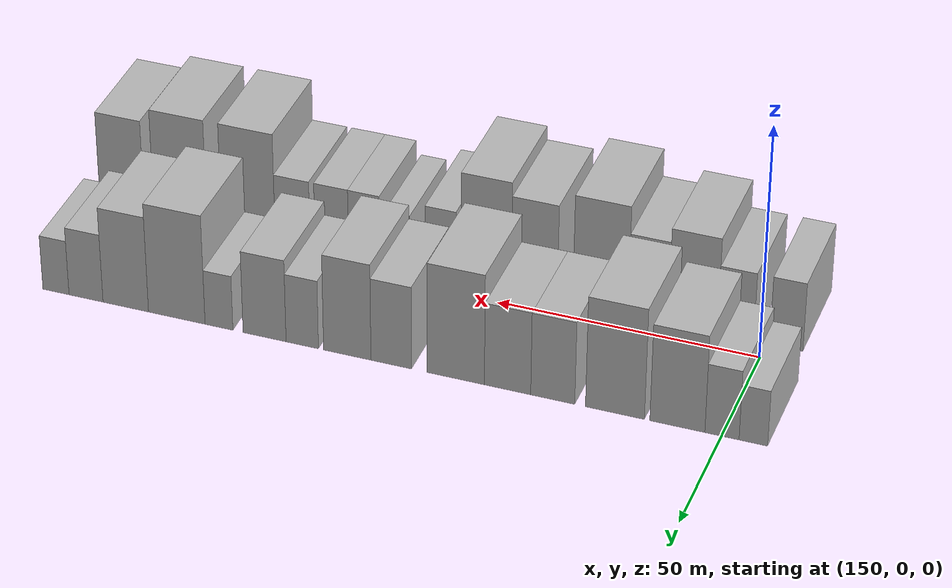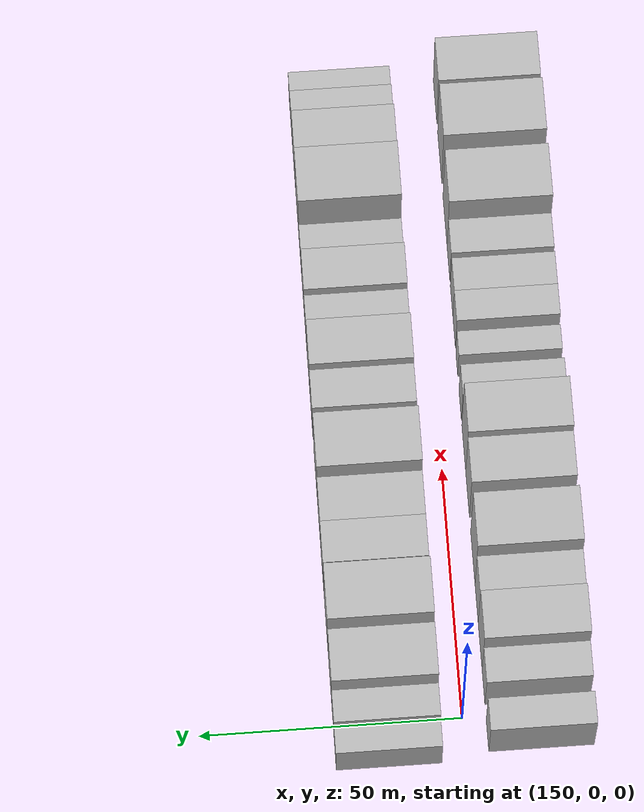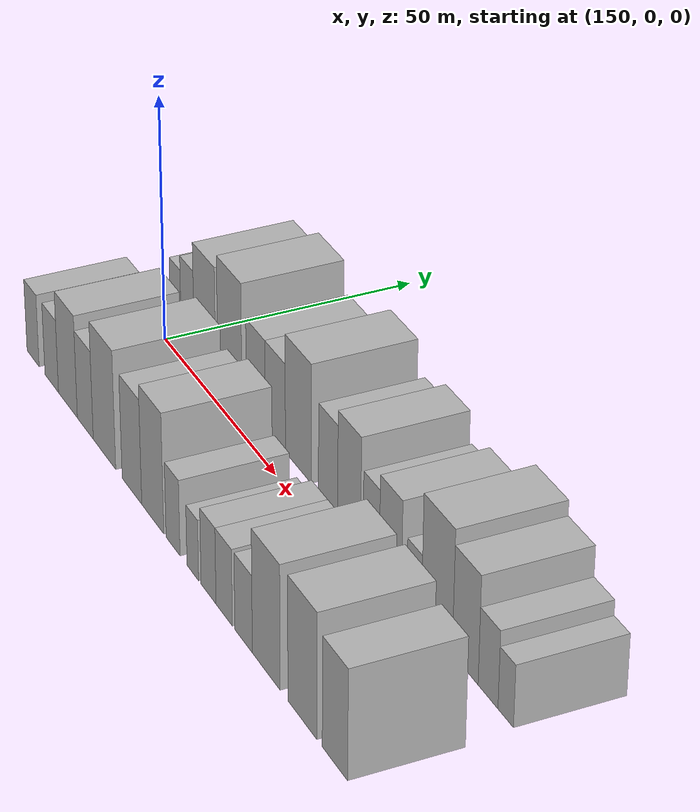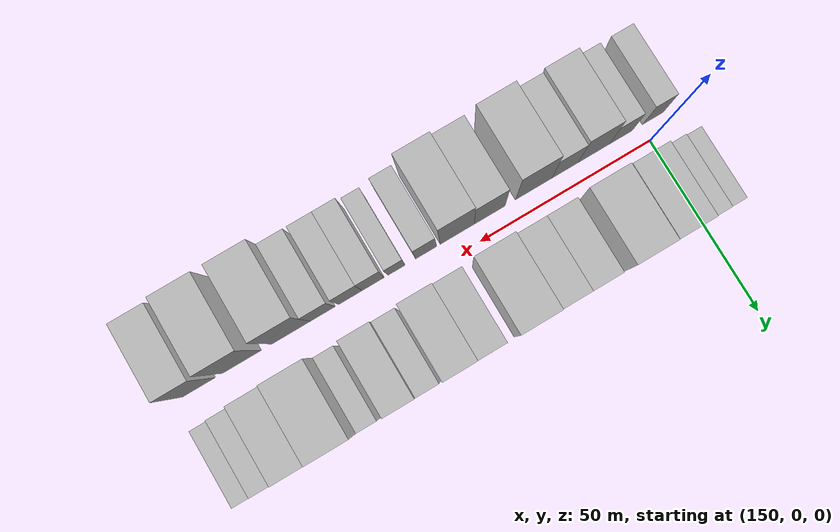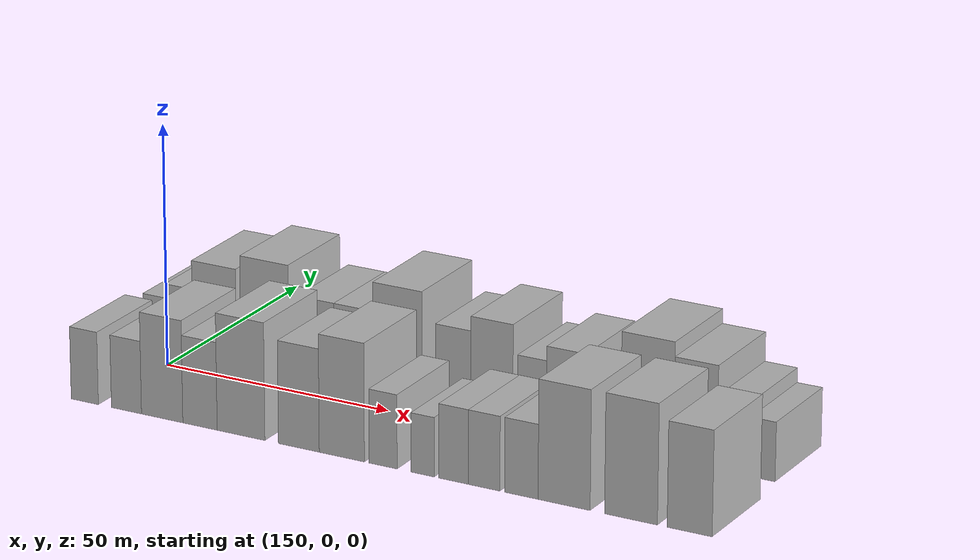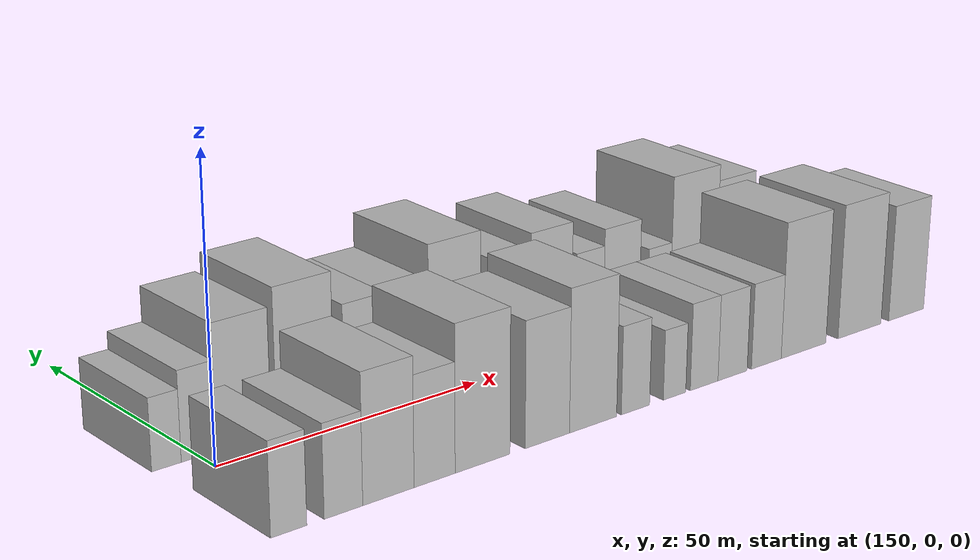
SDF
<sdf version="1.6">
 <world name="default">
  <model name="building_14">
   <static>1</static>
   <pose>144.2247 14.5000 0 0.000000 0.000000 1.570796</pose>
   <link name="link">
    <pose>0 0 6.00 0 0 0</pose>
    <collision name="collision"><geometry><box><size>20.0000 5.1963 12.0000</size></box></geometry></collision>
    <visual name="visual">
     <cast_shadows>0</cast_shadows>
     <geometry><box><size>20.0000 5.1963 12.0000</size></box></geometry>
     <material>
      <script>
       <uri>model://HANNAS_wall/materials/scripts</uri>
       <uri>model://HANNAS_wall/materials/textures</uri>
       <name>vrc/HANNAS_wall</name>
      </script>
     </material>
    </visual>
   </link>
  </model>
  <model name="building_15">
   <static>1</static>
   <pose>149.9397 14.5000 0 0.000000 0.000000 1.570796</pose>
   <link name="link">
    <pose>0 0 7.50 0 0 0</pose>
    <collision name="collision"><geometry><box><size>20.0000 6.2338 15.0000</size></box></geometry></collision>
    <visual name="visual">
     <cast_shadows>0</cast_shadows>
     <geometry><box><size>20.0000 6.2338 15.0000</size></box></geometry>
     <material>
      <script>
       <uri>model://HANNAS_wall/materials/scripts</uri>
       <uri>model://HANNAS_wall/materials/textures</uri>
       <name>vrc/HANNAS_wall</name>
      </script>
     </material>
    </visual>
   </link>
  </model>
  <model name="building_16">
   <static>1</static>
   <pose>158.1114 14.5000 0 0.000000 0.000000 1.570796</pose>
   <link name="link">
    <pose>0 0 10.50 0 0 0</pose>
    <collision name="collision"><geometry><box><size>20.0000 10.1097 21.0000</size></box></geometry></collision>
    <visual name="visual">
     <cast_shadows>0</cast_shadows>
     <geometry><box><size>20.0000 10.1097 21.0000</size></box></geometry>
     <material>
      <script>
       <uri>model://HANNAS_wall/materials/scripts</uri>
       <uri>model://HANNAS_wall/materials/textures</uri>
       <name>vrc/HANNAS_wall</name>
      </script>
     </material>
    </visual>
   </link>
  </model>
  <model name="building_17">
   <static>1</static>
   <pose>169.6307 14.5000 0 0.000000 0.000000 1.570796</pose>
   <link name="link">
    <pose>0 0 12.00 0 0 0</pose>
    <collision name="collision"><geometry><box><size>20.0000 10.9290 24.0000</size></box></geometry></collision>
    <visual name="visual">
     <cast_shadows>0</cast_shadows>
     <geometry><box><size>20.0000 10.9290 24.0000</size></box></geometry>
     <material>
      <script>
       <uri>model://HANNAS_wall/materials/scripts</uri>
       <uri>model://HANNAS_wall/materials/textures</uri>
       <name>vrc/HANNAS_wall</name>
      </script>
     </material>
    </visual>
   </link>
  </model>
  <model name="building_18">
   <static>1</static>
   <pose>181.2219 14.5000 0 0.000000 0.000000 1.570796</pose>
   <link name="link">
    <pose>0 0 9.00 0 0 0</pose>
    <collision name="collision"><geometry><box><size>20.0000 8.2533 18.0000</size></box></geometry></collision>
    <visual name="visual">
     <cast_shadows>0</cast_shadows>
     <geometry><box><size>20.0000 8.2533 18.0000</size></box></geometry>
     <material>
      <script>
       <uri>model://HANNAS_wall/materials/scripts</uri>
       <uri>model://HANNAS_wall/materials/textures</uri>
       <name>vrc/HANNAS_wall</name>
      </script>
     </material>
    </visual>
   </link>
  </model>
  <model name="building_19">
   <static>1</static>
   <pose>189.7160 14.5000 0 0.000000 0.000000 1.570796</pose>
   <link name="link">
    <pose>0 0 9.00 0 0 0</pose>
    <collision name="collision"><geometry><box><size>20.0000 8.7350 18.0000</size></box></geometry></collision>
    <visual name="visual">
     <cast_shadows>0</cast_shadows>
     <geometry><box><size>20.0000 8.7350 18.0000</size></box></geometry>
     <material>
      <script>
       <uri>model://HANNAS_wall/materials/scripts</uri>
       <uri>model://HANNAS_wall/materials/textures</uri>
       <name>vrc/HANNAS_wall</name>
      </script>
     </material>
    </visual>
   </link>
  </model>
  <model name="building_20">
   <static>1</static>
   <pose>199.5120 14.5000 0 0.000000 0.000000 1.570796</pose>
   <link name="link">
    <pose>0 0 12.00 0 0 0</pose>
    <collision name="collision"><geometry><box><size>20.0000 10.8571 24.0000</size></box></geometry></collision>
    <visual name="visual">
     <cast_shadows>0</cast_shadows>
     <geometry><box><size>20.0000 10.8571 24.0000</size></box></geometry>
     <material>
      <script>
       <uri>model://HANNAS_wall/materials/scripts</uri>
       <uri>model://HANNAS_wall/materials/textures</uri>
       <name>vrc/HANNAS_wall</name>
      </script>
     </material>
    </visual>
   </link>
  </model>
  <model name="building_21">
   <static>1</static>
   <pose>211.8389 14.5000 0 0.000000 0.000000 1.570796</pose>
   <link name="link">
    <pose>0 0 9.00 0 0 0</pose>
    <collision name="collision"><geometry><box><size>20.0000 7.7967 18.0000</size></box></geometry></collision>
    <visual name="visual">
     <cast_shadows>0</cast_shadows>
     <geometry><box><size>20.0000 7.7967 18.0000</size></box></geometry>
     <material>
      <script>
       <uri>model://HANNAS_wall/materials/scripts</uri>
       <uri>model://HANNAS_wall/materials/textures</uri>
       <name>vrc/HANNAS_wall</name>
      </script>
     </material>
    </visual>
   </link>
  </model>
  <model name="building_22">
   <static>1</static>
   <pose>220.3157 14.5000 0 0.000000 0.000000 1.570796</pose>
   <link name="link">
    <pose>0 0 10.50 0 0 0</pose>
    <collision name="collision"><geometry><box><size>20.0000 9.1568 21.0000</size></box></geometry></collision>
    <visual name="visual">
     <cast_shadows>0</cast_shadows>
     <geometry><box><size>20.0000 9.1568 21.0000</size></box></geometry>
     <material>
      <script>
       <uri>model://HANNAS_wall/materials/scripts</uri>
       <uri>model://HANNAS_wall/materials/textures</uri>
       <name>vrc/HANNAS_wall</name>
      </script>
     </material>
    </visual>
   </link>
  </model>
  <model name="building_23">
   <static>1</static>
   <pose>229.0466 14.5000 0 0.000000 0.000000 1.570796</pose>
   <link name="link">
    <pose>0 0 7.50 0 0 0</pose>
    <collision name="collision"><geometry><box><size>20.0000 6.3051 15.0000</size></box></geometry></collision>
    <visual name="visual">
     <cast_shadows>0</cast_shadows>
     <geometry><box><size>20.0000 6.3051 15.0000</size></box></geometry>
     <material>
      <script>
       <uri>model://HANNAS_wall/materials/scripts</uri>
       <uri>model://HANNAS_wall/materials/textures</uri>
       <name>vrc/HANNAS_wall</name>
      </script>
     </material>
    </visual>
   </link>
  </model>
  <model name="building_24">
   <static>1</static>
   <pose>236.4093 14.5000 0 0.000000 0.000000 1.570796</pose>
   <link name="link">
    <pose>0 0 9.00 0 0 0</pose>
    <collision name="collision"><geometry><box><size>20.0000 8.4203 18.0000</size></box></geometry></collision>
    <visual name="visual">
     <cast_shadows>0</cast_shadows>
     <geometry><box><size>20.0000 8.4203 18.0000</size></box></geometry>
     <material>
      <script>
       <uri>model://HANNAS_wall/materials/scripts</uri>
       <uri>model://HANNAS_wall/materials/textures</uri>
       <name>vrc/HANNAS_wall</name>
      </script>
     </material>
    </visual>
   </link>
  </model>
  <model name="building_25">
   <static>1</static>
   <pose>245.3656 14.5000 0 0.000000 0.000000 1.570796</pose>
   <link name="link">
    <pose>0 0 6.00 0 0 0</pose>
    <collision name="collision"><geometry><box><size>20.0000 5.4925 12.0000</size></box></geometry></collision>
    <visual name="visual">
     <cast_shadows>0</cast_shadows>
     <geometry><box><size>20.0000 5.4925 12.0000</size></box></geometry>
     <material>
      <script>
       <uri>model://HANNAS_wall/materials/scripts</uri>
       <uri>model://HANNAS_wall/materials/textures</uri>
       <name>vrc/HANNAS_wall</name>
      </script>
     </material>
    </visual>
   </link>
  </model>
  <model name="building_26">
   <static>1</static>
   <pose>253.7305 14.5000 0 0.000000 0.000000 1.570796</pose>
   <link name="link">
    <pose>0 0 12.00 0 0 0</pose>
    <collision name="collision"><geometry><box><size>20.0000 11.2373 24.0000</size></box></geometry></collision>
    <visual name="visual">
     <cast_shadows>0</cast_shadows>
     <geometry><box><size>20.0000 11.2373 24.0000</size></box></geometry>
     <material>
      <script>
       <uri>model://HANNAS_wall/materials/scripts</uri>
       <uri>model://HANNAS_wall/materials/textures</uri>
       <name>vrc/HANNAS_wall</name>
      </script>
     </material>
    </visual>
   </link>
  </model>
  <model name="building_27">
   <static>1</static>
   <pose>263.9047 14.5000 0 0.000000 0.000000 1.570796</pose>
   <link name="link">
    <pose>0 0 10.50 0 0 0</pose>
    <collision name="collision"><geometry><box><size>20.0000 9.1110 21.0000</size></box></geometry></collision>
    <visual name="visual">
     <cast_shadows>0</cast_shadows>
     <geometry><box><size>20.0000 9.1110 21.0000</size></box></geometry>
     <material>
      <script>
       <uri>model://HANNAS_wall/materials/scripts</uri>
       <uri>model://HANNAS_wall/materials/textures</uri>
       <name>vrc/HANNAS_wall</name>
      </script>
     </material>
    </visual>
   </link>
  </model>
  <model name="building_28">
   <static>1</static>
   <pose>271.8856 14.5000 0 0.000000 0.000000 1.570796</pose>
   <link name="link">
    <pose>0 0 7.50 0 0 0</pose>
    <collision name="collision"><geometry><box><size>20.0000 6.8509 15.0000</size></box></geometry></collision>
    <visual name="visual">
     <cast_shadows>0</cast_shadows>
     <geometry><box><size>20.0000 6.8509 15.0000</size></box></geometry>
     <material>
      <script>
       <uri>model://HANNAS_wall/materials/scripts</uri>
       <uri>model://HANNAS_wall/materials/textures</uri>
       <name>vrc/HANNAS_wall</name>
      </script>
     </material>
    </visual>
   </link>
  </model>
  <model name="building_29">
   <static>1</static>
   <pose>277.9489 14.5000 0 0.000000 0.000000 1.570796</pose>
   <link name="link">
    <pose>0 0 6.00 0 0 0</pose>
    <collision name="collision"><geometry><box><size>20.0000 5.2755 12.0000</size></box></geometry></collision>
    <visual name="visual">
     <cast_shadows>0</cast_shadows>
     <geometry><box><size>20.0000 5.2755 12.0000</size></box></geometry>
     <material>
      <script>
       <uri>model://HANNAS_wall/materials/scripts</uri>
       <uri>model://HANNAS_wall/materials/textures</uri>
       <name>vrc/HANNAS_wall</name>
      </script>
     </material>
    </visual>
   </link>
  </model>
  <model name="building_45">
   <static>1</static>
   <pose>146.3223 -14.5000 0 0.000000 0.000000 1.570796</pose>
   <link name="link">
    <pose>0 0 7.50 0 0 0</pose>
    <collision name="collision"><geometry><box><size>20.0000 6.2253 15.0000</size></box></geometry></collision>
    <visual name="visual">
     <cast_shadows>0</cast_shadows>
     <geometry><box><size>20.0000 6.2253 15.0000</size></box></geometry>
     <material>
      <script>
       <uri>model://HANNAS_wall/materials/scripts</uri>
       <uri>model://HANNAS_wall/materials/textures</uri>
       <name>vrc/HANNAS_wall</name>
      </script>
     </material>
    </visual>
   </link>
  </model>
  <model name="building_46">
   <static>1</static>
   <pose>155.8530 -14.5000 0 0.000000 0.000000 1.570796</pose>
   <link name="link">
    <pose>0 0 7.50 0 0 0</pose>
    <collision name="collision"><geometry><box><size>20.0000 6.8361 15.0000</size></box></geometry></collision>
    <visual name="visual">
     <cast_shadows>0</cast_shadows>
     <geometry><box><size>20.0000 6.8361 15.0000</size></box></geometry>
     <material>
      <script>
       <uri>model://HANNAS_wall/materials/scripts</uri>
       <uri>model://HANNAS_wall/materials/textures</uri>
       <name>vrc/HANNAS_wall</name>
      </script>
     </material>
    </visual>
   </link>
  </model>
  <model name="building_47">
   <static>1</static>
   <pose>163.9520 -14.5000 0 0.000000 0.000000 1.570796</pose>
   <link name="link">
    <pose>0 0 10.50 0 0 0</pose>
    <collision name="collision"><geometry><box><size>20.0000 9.3619 21.0000</size></box></geometry></collision>
    <visual name="visual">
     <cast_shadows>0</cast_shadows>
     <geometry><box><size>20.0000 9.3619 21.0000</size></box></geometry>
     <material>
      <script>
       <uri>model://HANNAS_wall/materials/scripts</uri>
       <uri>model://HANNAS_wall/materials/textures</uri>
       <name>vrc/HANNAS_wall</name>
      </script>
     </material>
    </visual>
   </link>
  </model>
  <model name="building_48">
   <static>1</static>
   <pose>172.4879 -14.5000 0 0.000000 0.000000 1.570796</pose>
   <link name="link">
    <pose>0 0 9.00 0 0 0</pose>
    <collision name="collision"><geometry><box><size>20.0000 7.7100 18.0000</size></box></geometry></collision>
    <visual name="visual">
     <cast_shadows>0</cast_shadows>
     <geometry><box><size>20.0000 7.7100 18.0000</size></box></geometry>
     <material>
      <script>
       <uri>model://HANNAS_wall/materials/scripts</uri>
       <uri>model://HANNAS_wall/materials/textures</uri>
       <name>vrc/HANNAS_wall</name>
      </script>
     </material>
    </visual>
   </link>
  </model>
  <model name="building_49">
   <static>1</static>
   <pose>181.6602 -14.5000 0 0.000000 0.000000 1.570796</pose>
   <link name="link">
    <pose>0 0 12.00 0 0 0</pose>
    <collision name="collision"><geometry><box><size>20.0000 10.6346 24.0000</size></box></geometry></collision>
    <visual name="visual">
     <cast_shadows>0</cast_shadows>
     <geometry><box><size>20.0000 10.6346 24.0000</size></box></geometry>
     <material>
      <script>
       <uri>model://HANNAS_wall/materials/scripts</uri>
       <uri>model://HANNAS_wall/materials/textures</uri>
       <name>vrc/HANNAS_wall</name>
      </script>
     </material>
    </visual>
   </link>
  </model>
  <model name="building_50">
   <static>1</static>
   <pose>194.4681 -14.5000 0 0.000000 0.000000 1.570796</pose>
   <link name="link">
    <pose>0 0 10.50 0 0 0</pose>
    <collision name="collision"><geometry><box><size>20.0000 8.9810 21.0000</size></box></geometry></collision>
    <visual name="visual">
     <cast_shadows>0</cast_shadows>
     <geometry><box><size>20.0000 8.9810 21.0000</size></box></geometry>
     <material>
      <script>
       <uri>model://HANNAS_wall/materials/scripts</uri>
       <uri>model://HANNAS_wall/materials/textures</uri>
       <name>vrc/HANNAS_wall</name>
      </script>
     </material>
    </visual>
   </link>
  </model>
  <model name="building_51">
   <static>1</static>
   <pose>203.8892 -14.5000 0 0.000000 0.000000 1.570796</pose>
   <link name="link">
    <pose>0 0 12.00 0 0 0</pose>
    <collision name="collision"><geometry><box><size>20.0000 9.8612 24.0000</size></box></geometry></collision>
    <visual name="visual">
     <cast_shadows>0</cast_shadows>
     <geometry><box><size>20.0000 9.8612 24.0000</size></box></geometry>
     <material>
      <script>
       <uri>model://HANNAS_wall/materials/scripts</uri>
       <uri>model://HANNAS_wall/materials/textures</uri>
       <name>vrc/HANNAS_wall</name>
      </script>
     </material>
    </visual>
   </link>
  </model>
  <model name="building_52">
   <static>1</static>
   <pose>212.8627 -14.5000 0 0.000000 0.000000 1.570796</pose>
   <link name="link">
    <pose>0 0 7.50 0 0 0</pose>
    <collision name="collision"><geometry><box><size>20.0000 6.0858 15.0000</size></box></geometry></collision>
    <visual name="visual">
     <cast_shadows>0</cast_shadows>
     <geometry><box><size>20.0000 6.0858 15.0000</size></box></geometry>
     <material>
      <script>
       <uri>model://HANNAS_wall/materials/scripts</uri>
       <uri>model://HANNAS_wall/materials/textures</uri>
       <name>vrc/HANNAS_wall</name>
      </script>
     </material>
    </visual>
   </link>
  </model>
  <model name="building_53">
   <static>1</static>
   <pose>221.3942 -14.5000 0 0.000000 0.000000 1.570796</pose>
   <link name="link">
    <pose>0 0 6.00 0 0 0</pose>
    <collision name="collision"><geometry><box><size>20.0000 4.9773 12.0000</size></box></geometry></collision>
    <visual name="visual">
     <cast_shadows>0</cast_shadows>
     <geometry><box><size>20.0000 4.9773 12.0000</size></box></geometry>
     <material>
      <script>
       <uri>model://HANNAS_wall/materials/scripts</uri>
       <uri>model://HANNAS_wall/materials/textures</uri>
       <name>vrc/HANNAS_wall</name>
      </script>
     </material>
    </visual>
   </link>
  </model>
  <model name="building_54">
   <static>1</static>
   <pose>228.0225 -14.5000 0 0.000000 0.000000 1.570796</pose>
   <link name="link">
    <pose>0 0 7.50 0 0 0</pose>
    <collision name="collision"><geometry><box><size>20.0000 6.2794 15.0000</size></box></geometry></collision>
    <visual name="visual">
     <cast_shadows>0</cast_shadows>
     <geometry><box><size>20.0000 6.2794 15.0000</size></box></geometry>
     <material>
      <script>
       <uri>model://HANNAS_wall/materials/scripts</uri>
       <uri>model://HANNAS_wall/materials/textures</uri>
       <name>vrc/HANNAS_wall</name>
      </script>
     </material>
    </visual>
   </link>
  </model>
  <model name="building_55">
   <static>1</static>
   <pose>234.5255 -14.5000 0 0.000000 0.000000 1.570796</pose>
   <link name="link">
    <pose>0 0 7.50 0 0 0</pose>
    <collision name="collision"><geometry><box><size>20.0000 6.7266 15.0000</size></box></geometry></collision>
    <visual name="visual">
     <cast_shadows>0</cast_shadows>
     <geometry><box><size>20.0000 6.7266 15.0000</size></box></geometry>
     <material>
      <script>
       <uri>model://HANNAS_wall/materials/scripts</uri>
       <uri>model://HANNAS_wall/materials/textures</uri>
       <name>vrc/HANNAS_wall</name>
      </script>
     </material>
    </visual>
   </link>
  </model>
  <model name="building_56">
   <static>1</static>
   <pose>242.4114 -14.5000 0 0.000000 0.000000 1.570796</pose>
   <link name="link">
    <pose>0 0 7.50 0 0 0</pose>
    <collision name="collision"><geometry><box><size>20.0000 7.0451 15.0000</size></box></geometry></collision>
    <visual name="visual">
     <cast_shadows>0</cast_shadows>
     <geometry><box><size>20.0000 7.0451 15.0000</size></box></geometry>
     <material>
      <script>
       <uri>model://HANNAS_wall/materials/scripts</uri>
       <uri>model://HANNAS_wall/materials/textures</uri>
       <name>vrc/HANNAS_wall</name>
      </script>
     </material>
    </visual>
   </link>
  </model>
  <model name="building_57">
   <static>1</static>
   <pose>251.3777 -14.5000 0 0.000000 0.000000 1.570796</pose>
   <link name="link">
    <pose>0 0 12.00 0 0 0</pose>
    <collision name="collision"><geometry><box><size>20.0000 10.8875 24.0000</size></box></geometry></collision>
    <visual name="visual">
     <cast_shadows>0</cast_shadows>
     <geometry><box><size>20.0000 10.8875 24.0000</size></box></geometry>
     <material>
      <script>
       <uri>model://HANNAS_wall/materials/scripts</uri>
       <uri>model://HANNAS_wall/materials/textures</uri>
       <name>vrc/HANNAS_wall</name>
      </script>
     </material>
    </visual>
   </link>
  </model>
  <model name="building_58">
   <static>1</static>
   <pose>265.2764 -14.5000 0 0.000000 0.000000 1.570796</pose>
   <link name="link">
    <pose>0 0 12.00 0 0 0</pose>
    <collision name="collision"><geometry><box><size>20.0000 10.9101 24.0000</size></box></geometry></collision>
    <visual name="visual">
     <cast_shadows>0</cast_shadows>
     <geometry><box><size>20.0000 10.9101 24.0000</size></box></geometry>
     <material>
      <script>
       <uri>model://HANNAS_wall/materials/scripts</uri>
       <uri>model://HANNAS_wall/materials/textures</uri>
       <name>vrc/HANNAS_wall</name>
      </script>
     </material>
    </visual>
   </link>
  </model>
  <model name="building_59">
   <static>1</static>
   <pose>277.3226 -14.5000 0 0.000000 0.000000 1.570796</pose>
   <link name="link">
    <pose>0 0 10.50 0 0 0</pose>
    <collision name="collision"><geometry><box><size>20.0000 9.1823 21.0000</size></box></geometry></collision>
    <visual name="visual">
     <cast_shadows>0</cast_shadows>
     <geometry><box><size>20.0000 9.1823 21.0000</size></box></geometry>
     <material>
      <script>
       <uri>model://HANNAS_wall/materials/scripts</uri>
       <uri>model://HANNAS_wall/materials/textures</uri>
       <name>vrc/HANNAS_wall</name>
      </script>
     </material>
    </visual>
   </link>
  </model>
 </world>
</sdf>
